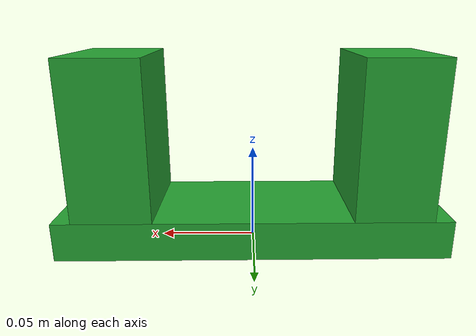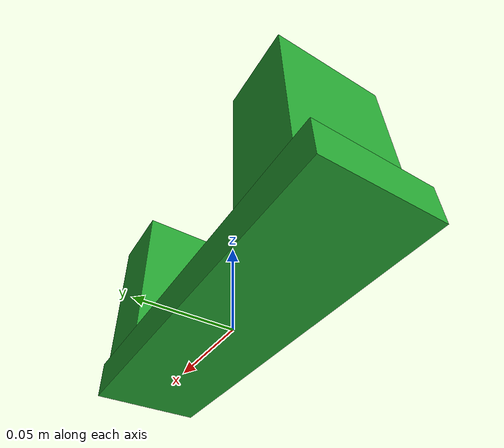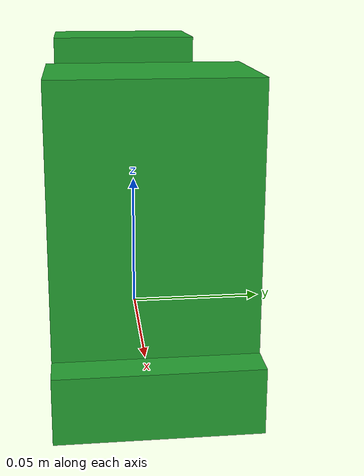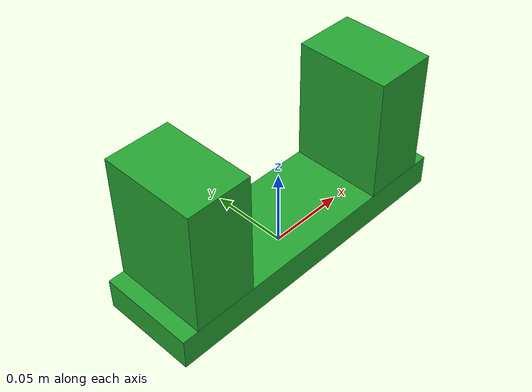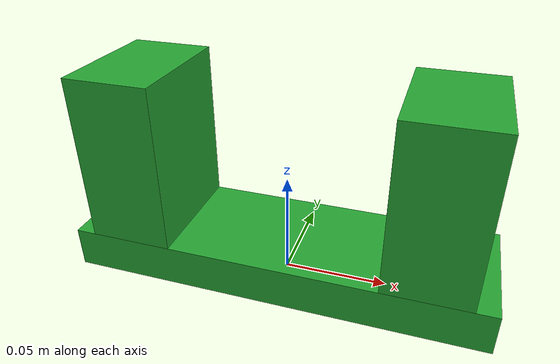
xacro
<?xml version="1.0"?>
<robot xmlns:xacro="http://www.ros.org/wiki/xacro">

    <link name="gripper_base_link">
        <visual>
            <geometry>
                <box size="0.2 0.06 0.02" />
            </geometry>
            <origin xyz="0 0 0.01" rpy="0 0 0" />
            <material name="dark_green" />
        </visual>
        <collision>
           <geometry>
                <box size="0.2 0.06 0.02" />
            </geometry>
            <origin xyz="0 0 0.01" rpy="0 0 0" />
        </collision>
        <inertial>
            <mass value="0.0648" />
            <inertia ixx="0.000021" ixy="0" ixz="0" iyy="0.000216" iyz="0" izz="0.000216" />
            <origin xyz="0 0 0.01" />
        </inertial>
    </link>

    <link name="gripper_left_finger_link">
        <visual>
            <geometry>
                <box size="0.04 0.06 0.08" />
            </geometry>
            <origin xyz="0 0 0.04" rpy="0 0 0" />
            <material name="Light_green" />
        </visual>
        <collision>
            <geometry>
                <box size="0.04 0.06 0.08" />
            </geometry>
            <origin xyz="0 0 0.04" rpy="0 0 0" />
        </collision>
        <inertial>
            <mass value="0.05" />
            <inertia ixx="0.0000417" ixy="0" ixz="0" iyy="0.0000333" iyz="0" izz="0.0000217" />
            <origin xyz="0 0 0.04" />
        </inertial>
    </link>

     <link name="gripper_right_finger_link">
        <visual>
            <geometry>
                <box size="0.04 0.06 0.08" />
            </geometry>
            <origin xyz="0 0 0.04" rpy="0 0 0" />
            <material name="Light_green" />
        </visual>
        <collision>
            <geometry>
                <box size="0.04 0.06 0.08" />
            </geometry>
            <origin xyz="0 0 0.04" rpy="0 0 0" />
        </collision>
        <inertial>
            <mass value="0.05" />
            <inertia ixx="0.0000417" ixy="0" ixz="0" iyy="0.0000333" iyz="0" izz="0.0000217" />
            <origin xyz="0 0 0.04" />
        </inertial>
    </link>

    <joint name="gripper_left_finger_joint" type="prismatic">
        <parent link="gripper_base_link" />
        <child link="gripper_left_finger_link" />
        <origin xyz="-0.07 0 0.02" rpy="0 0 0" />
        <axis xyz="1 0 0" />
        <limit effort="1000.0" velocity="1.0" lower="0.0" upper="0.06" />
    </joint>

    <joint name="gripper_right_finger_joint" type="prismatic">
        <parent link="gripper_base_link" />
        <child link="gripper_right_finger_link" />
        <origin xyz="0.07 0 0.02" rpy="0 0 0" />
        <axis xyz="1 0 0" />
        <mimic joint="gripper_left_finger_joint" multiplier="-1.0" />
        <limit effort="1000.0" velocity="1.0" lower="-0.06" upper="0" />
    </joint>

</robot>
